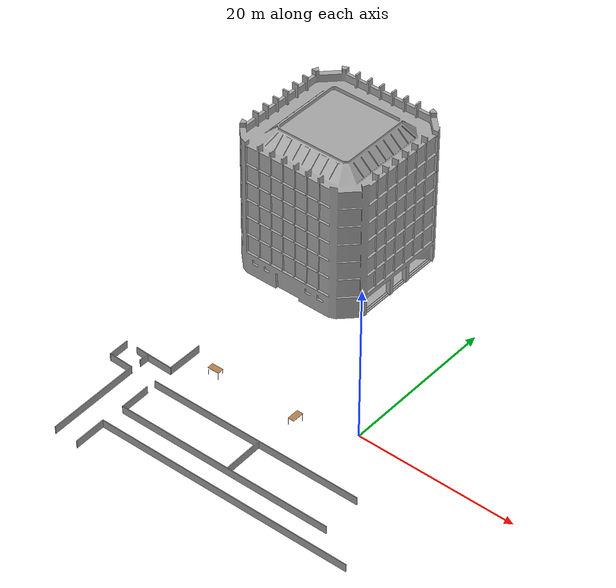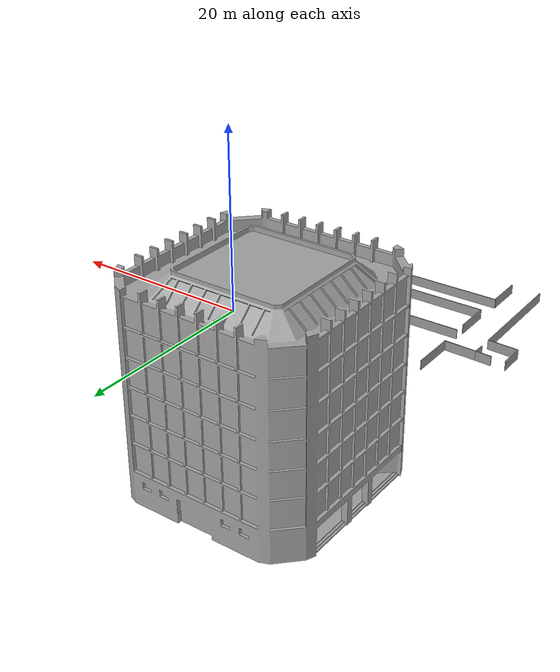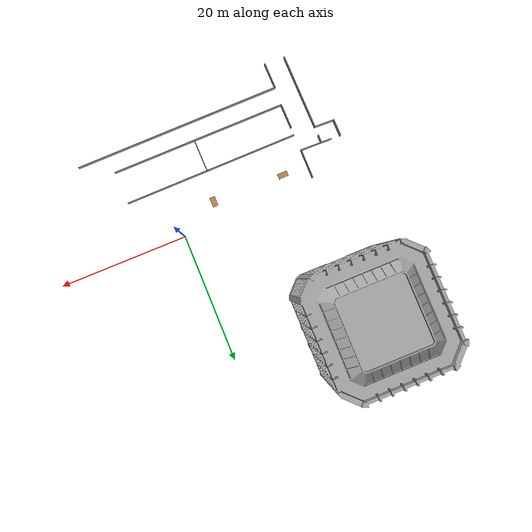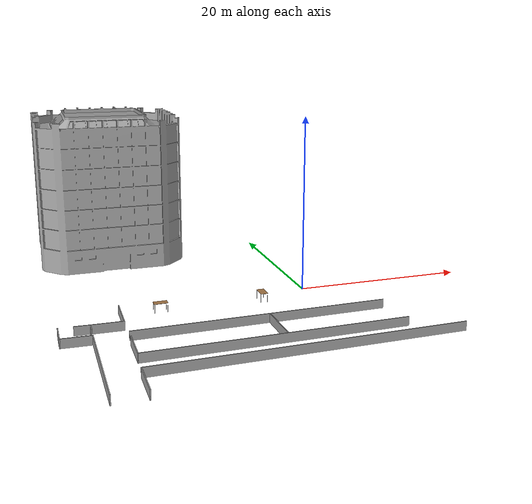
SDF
<sdf version="1.6">
 <world name="default">
  <model name="big_project_room">
   <link name="link_0_clone_clone">
    <pose>-19.9604 2.29143 -0.013844 0.00066 0 -1.57081</pose>
    <inertial>
     <mass>1</mass>
     <inertia>
      <ixx>0.166667</ixx>
      <ixy>0</ixy>
      <ixz>0</ixz>
      <iyy>0.166667</iyy>
      <iyz>0</iyz>
      <izz>0.166667</izz>
     </inertia>
    </inertial>
    <visual name="visual">
     <geometry><box><size>4.527 0.1 1</size></box></geometry>
     <material>
      <lighting>1</lighting>
      <script><uri>file://media/materials/scripts/gazebo.material</uri><name>Gazebo/Grey</name></script>
      <shader type="pixel"><normal_map>__default__</normal_map></shader>
      <ambient>1 1 1 1</ambient>
      <diffuse>0.7 0.7 0.7 1</diffuse>
      <specular>0.01 0.01 0.01 1</specular>
      <emissive>0 0 0 1</emissive>
     </material>
    </visual>
    <collision name="collision">
     <geometry><box><size>4.572 0.1 1</size></box></geometry>
     <surface>
      <friction>
       <ode><mu>1</mu><mu2>1</mu2><fdir1>0 0 0</fdir1><slip1>0</slip1><slip2>0</slip2></ode>
       <torsional>
        <coefficient>1</coefficient>
        <patch_radius>0</patch_radius>
        <surface_radius>0</surface_radius>
        <use_patch_radius>1</use_patch_radius>
        <ode><slip>0</slip></ode>
       </torsional>
      </friction>
      <bounce><restitution_coefficient>0</restitution_coefficient><threshold>1e+06</threshold></bounce>
      <contact>
       <collide_without_contact>0</collide_without_contact>
       <collide_without_contact_bitmask>1</collide_without_contact_bitmask>
       <collide_bitmask>1</collide_bitmask>
       <ode>
        <soft_cfm>0</soft_cfm>
        <soft_erp>0.2</soft_erp>
        <kp>1e+13</kp>
        <kd>1</kd>
        <max_vel>0.01</max_vel>
        <min_depth>0</min_depth>
       </ode>
       <bullet>
        <split_impulse>1</split_impulse>
        <split_impulse_penetration_threshold>-0.01</split_impulse_penetration_threshold>
        <soft_cfm>0</soft_cfm>
        <soft_erp>0.2</soft_erp>
        <kp>1e+13</kp>
        <kd>1</kd>
       </bullet>
      </contact>
     </surface>
    </collision>
   </link>
   <link name="link_clone_1_clone">
    <pose>-3.72157 -10.3844 -0.010858 -0.00132 1.3e-05 -3.13177</pose>
    <inertial>
     <mass>0.268169</mass>
     <inertia>
      <ixx>0.0225823</ixx>
      <ixy>0</ixy>
      <ixz>0</ixz>
      <iyy>23.7593</iyy>
      <iyz>0</iyz>
      <izz>23.7372</izz>
     </inertia>
    </inertial>
    <visual name="visual">
     <geometry><box><size>32.5911 0.10251 1</size></box></geometry>
     <material>
      <script><name>Gazebo/Grey</name><uri>file://media/materials/scripts/gazebo.material</uri></script>
      <shader type="pixel"><normal_map>__default__</normal_map></shader>
      <ambient>1 1 1 1</ambient>
      <diffuse>0.7 0.7 0.7 1</diffuse>
      <specular>0.01 0.01 0.01 1</specular>
      <emissive>0 0 0 1</emissive>
     </material>
    </visual>
    <collision name="collision">
     <geometry><box><size>32.5911 0.10251 1</size></box></geometry>
     <surface>
      <friction>
       <ode><mu>1</mu><mu2>1</mu2><fdir1>0 0 0</fdir1><slip1>0</slip1><slip2>0</slip2></ode>
       <torsional>
        <coefficient>1</coefficient>
        <patch_radius>0</patch_radius>
        <surface_radius>0</surface_radius>
        <use_patch_radius>1</use_patch_radius>
        <ode><slip>0</slip></ode>
       </torsional>
      </friction>
      <bounce><restitution_coefficient>0</restitution_coefficient><threshold>1e+06</threshold></bounce>
      <contact>
       <collide_without_contact>0</collide_without_contact>
       <collide_without_contact_bitmask>1</collide_without_contact_bitmask>
       <collide_bitmask>1</collide_bitmask>
       <ode>
        <soft_cfm>0</soft_cfm>
        <soft_erp>0.2</soft_erp>
        <kp>1e+13</kp>
        <kd>1</kd>
        <max_vel>0.01</max_vel>
        <min_depth>0</min_depth>
       </ode>
       <bullet>
        <split_impulse>1</split_impulse>
        <split_impulse_penetration_threshold>-0.01</split_impulse_penetration_threshold>
        <soft_cfm>0</soft_cfm>
        <soft_erp>0.2</soft_erp>
        <kp>1e+13</kp>
        <kd>1</kd>
       </bullet>
      </contact>
     </surface>
    </collision>
   </link>
   <link name="link_clone_1_clone_1">
    <pose>-21.5976 0.008554 -0.003949 0.00132 2.1e-05 -0.016034</pose>
    <inertial>
     <mass>0.0277737</mass>
     <inertia>
      <ixx>0.0023388</ixx>
      <ixy>0</ixy>
      <ixz>0</ixz>
      <iyy>0.0286838</iyy>
      <iyz>0</iyz>
      <izz>0.0263937</izz>
     </inertia>
    </inertial>
    <visual name="visual">
     <geometry><box><size>3.37539 0.10251 1</size></box></geometry>
     <material>
      <script><name>Gazebo/Grey</name><uri>file://media/materials/scripts/gazebo.material</uri></script>
      <shader type="pixel"><normal_map>__default__</normal_map></shader>
      <ambient>1 1 1 1</ambient>
      <diffuse>0.7 0.7 0.7 1</diffuse>
      <specular>0.01 0.01 0.01 1</specular>
      <emissive>0 0 0 1</emissive>
     </material>
    </visual>
    <collision name="collision">
     <geometry><box><size>3.37539 0.10251 1</size></box></geometry>
     <surface>
      <friction>
       <ode><mu>1</mu><mu2>1</mu2><fdir1>0 0 0</fdir1><slip1>0</slip1><slip2>0</slip2></ode>
       <torsional>
        <coefficient>1</coefficient>
        <patch_radius>0</patch_radius>
        <surface_radius>0</surface_radius>
        <use_patch_radius>1</use_patch_radius>
        <ode><slip>0</slip></ode>
       </torsional>
      </friction>
      <bounce><restitution_coefficient>0</restitution_coefficient><threshold>1e+06</threshold></bounce>
      <contact>
       <collide_without_contact>0</collide_without_contact>
       <collide_without_contact_bitmask>1</collide_without_contact_bitmask>
       <collide_bitmask>1</collide_bitmask>
       <ode>
        <soft_cfm>0</soft_cfm>
        <soft_erp>0.2</soft_erp>
        <kp>1e+13</kp>
        <kd>1</kd>
        <max_vel>0.01</max_vel>
        <min_depth>0</min_depth>
       </ode>
       <bullet>
        <split_impulse>1</split_impulse>
        <split_impulse_penetration_threshold>-0.01</split_impulse_penetration_threshold>
        <soft_cfm>0</soft_cfm>
        <soft_erp>0.2</soft_erp>
        <kp>1e+13</kp>
        <kd>1</kd>
       </bullet>
      </contact>
     </surface>
    </collision>
   </link>
   <link name="link_clone_1_clone_2">
    <pose>-26.3913 -1.18616 -0.004231 2e-05 0.00132 -1.55514</pose>
    <inertial>
     <mass>0.0221356</mass>
     <inertia>
      <ixx>0.00186402</ixx>
      <ixy>0</ixy>
      <ixz>0</ixz>
      <iyy>0.0151943</iyy>
      <iyz>0</iyz>
      <izz>0.0133691</izz>
     </inertia>
    </inertial>
    <visual name="visual">
     <geometry><box><size>2.69018 0.10251 1</size></box></geometry>
     <material>
      <script><name>Gazebo/Grey</name><uri>file://media/materials/scripts/gazebo.material</uri></script>
      <shader type="pixel"><normal_map>__default__</normal_map></shader>
      <ambient>1 1 1 1</ambient>
      <diffuse>0.7 0.7 0.7 1</diffuse>
      <specular>0.01 0.01 0.01 1</specular>
      <emissive>0 0 0 1</emissive>
     </material>
    </visual>
    <collision name="collision">
     <geometry><box><size>2.69018 0.10251 1</size></box></geometry>
     <surface>
      <friction>
       <ode><mu>1</mu><mu2>1</mu2><fdir1>0 0 0</fdir1><slip1>0</slip1><slip2>0</slip2></ode>
       <torsional>
        <coefficient>1</coefficient>
        <patch_radius>0</patch_radius>
        <surface_radius>0</surface_radius>
        <use_patch_radius>1</use_patch_radius>
        <ode><slip>0</slip></ode>
       </torsional>
      </friction>
      <bounce><restitution_coefficient>0</restitution_coefficient><threshold>1e+06</threshold></bounce>
      <contact>
       <collide_without_contact>0</collide_without_contact>
       <collide_without_contact_bitmask>1</collide_without_contact_bitmask>
       <collide_bitmask>1</collide_bitmask>
       <ode>
        <soft_cfm>0</soft_cfm>
        <soft_erp>0.2</soft_erp>
        <kp>1e+13</kp>
        <kd>1</kd>
        <max_vel>0.01</max_vel>
        <min_depth>0</min_depth>
       </ode>
       <bullet>
        <split_impulse>1</split_impulse>
        <split_impulse_penetration_threshold>-0.01</split_impulse_penetration_threshold>
        <soft_cfm>0</soft_cfm>
        <soft_erp>0.2</soft_erp>
        <kp>1e+13</kp>
        <kd>1</kd>
       </bullet>
      </contact>
     </surface>
    </collision>
   </link>
   <link name="link_clone_1_clone_2_clone">
    <pose>-24.7939 -2.51572 -0.005884 -0.001979 -6.5e-05 3.10906</pose>
    <inertial>
     <mass>0.0257709</mass>
     <inertia>
      <ixx>0.00217014</ixx>
      <ixy>0</ixy>
      <ixz>0</ixz>
      <iyy>0.0232138</iyy>
      <iyz>0</iyz>
      <izz>0.0210888</izz>
     </inertia>
    </inertial>
    <visual name="visual">
     <geometry><box><size>3.13198 0.10251 1</size></box></geometry>
     <material>
      <script><name>Gazebo/Grey</name><uri>file://media/materials/scripts/gazebo.material</uri></script>
      <shader type="pixel"><normal_map>__default__</normal_map></shader>
      <ambient>1 1 1 1</ambient>
      <diffuse>0.7 0.7 0.7 1</diffuse>
      <specular>0.01 0.01 0.01 1</specular>
      <emissive>0 0 0 1</emissive>
     </material>
    </visual>
    <collision name="collision">
     <geometry><box><size>3.13198 0.10251 1</size></box></geometry>
     <surface>
      <friction>
       <ode><mu>1</mu><mu2>1</mu2><fdir1>0 0 0</fdir1><slip1>0</slip1><slip2>0</slip2></ode>
       <torsional>
        <coefficient>1</coefficient>
        <patch_radius>0</patch_radius>
        <surface_radius>0</surface_radius>
        <use_patch_radius>1</use_patch_radius>
        <ode><slip>0</slip></ode>
       </torsional>
      </friction>
      <bounce><restitution_coefficient>0</restitution_coefficient><threshold>1e+06</threshold></bounce>
      <contact>
       <collide_without_contact>0</collide_without_contact>
       <collide_without_contact_bitmask>1</collide_without_contact_bitmask>
       <collide_bitmask>1</collide_bitmask>
       <ode>
        <soft_cfm>0</soft_cfm>
        <soft_erp>0.2</soft_erp>
        <kp>1e+13</kp>
        <kd>1</kd>
        <max_vel>0.01</max_vel>
        <min_depth>0</min_depth>
       </ode>
       <bullet>
        <split_impulse>1</split_impulse>
        <split_impulse_penetration_threshold>-0.01</split_impulse_penetration_threshold>
        <soft_cfm>0</soft_cfm>
        <soft_erp>0.2</soft_erp>
        <kp>1e+13</kp>
        <kd>1</kd>
       </bullet>
      </contact>
     </surface>
    </collision>
   </link>
   <link name="link_clone_1_clone_2_clone_0">
    <pose>-23.1913 -8.51767 -0.015724 3e-05 0.00198 -1.55514</pose>
    <inertial>
     <mass>0.0981255</mass>
     <inertia>
      <ixx>0.00826305</ixx>
      <ixy>0</ixy>
      <ixz>0</ixz>
      <iyy>1.17108</iyy>
      <iyz>0</iyz>
      <izz>1.16299</izz>
     </inertia>
    </inertial>
    <visual name="visual">
     <geometry><box><size>11.9254 0.10251 1</size></box></geometry>
     <material>
      <script><name>Gazebo/Grey</name><uri>file://media/materials/scripts/gazebo.material</uri></script>
      <shader type="pixel"><normal_map>__default__</normal_map></shader>
      <ambient>1 1 1 1</ambient>
      <diffuse>0.7 0.7 0.7 1</diffuse>
      <specular>0.01 0.01 0.01 1</specular>
      <emissive>0 0 0 1</emissive>
     </material>
    </visual>
    <collision name="collision">
     <geometry><box><size>11.9254 0.10251 1</size></box></geometry>
     <surface>
      <friction>
       <ode><mu>1</mu><mu2>1</mu2><fdir1>0 0 0</fdir1><slip1>0</slip1><slip2>0</slip2></ode>
       <torsional>
        <coefficient>1</coefficient>
        <patch_radius>0</patch_radius>
        <surface_radius>0</surface_radius>
        <use_patch_radius>1</use_patch_radius>
        <ode><slip>0</slip></ode>
       </torsional>
      </friction>
      <bounce><restitution_coefficient>0</restitution_coefficient><threshold>1e+06</threshold></bounce>
      <contact>
       <collide_without_contact>0</collide_without_contact>
       <collide_without_contact_bitmask>1</collide_without_contact_bitmask>
       <collide_bitmask>1</collide_bitmask>
       <ode>
        <soft_cfm>0</soft_cfm>
        <soft_erp>0.2</soft_erp>
        <kp>1e+13</kp>
        <kd>1</kd>
        <max_vel>0.01</max_vel>
        <min_depth>0</min_depth>
       </ode>
       <bullet>
        <split_impulse>1</split_impulse>
        <split_impulse_penetration_threshold>-0.01</split_impulse_penetration_threshold>
        <soft_cfm>0</soft_cfm>
        <soft_erp>0.2</soft_erp>
        <kp>1e+13</kp>
        <kd>1</kd>
       </bullet>
      </contact>
     </surface>
    </collision>
   </link>
   <link name="link_clone_1_clone_2_clone_1">
    <pose>-19.8397 -5.74339 -0.010301 3e-05 0.00198 -1.55514</pose>
    <inertial>
     <mass>0.0322722</mass>
     <inertia>
      <ixx>0.00271761</ixx>
      <ixy>0</ixy>
      <ixz>0</ixz>
      <iyy>0.0440592</iyy>
      <iyz>0</iyz>
      <izz>0.0413981</izz>
     </inertia>
    </inertial>
    <visual name="visual">
     <geometry><box><size>3.9221 0.10251 1</size></box></geometry>
     <material>
      <script><name>Gazebo/Grey</name><uri>file://media/materials/scripts/gazebo.material</uri></script>
      <shader type="pixel"><normal_map>__default__</normal_map></shader>
      <ambient>1 1 1 1</ambient>
      <diffuse>0.7 0.7 0.7 1</diffuse>
      <specular>0.01 0.01 0.01 1</specular>
      <emissive>0 0 0 1</emissive>
     </material>
    </visual>
    <collision name="collision">
     <geometry><box><size>3.9221 0.10251 1</size></box></geometry>
     <surface>
      <friction>
       <ode><mu>1</mu><mu2>1</mu2><fdir1>0 0 0</fdir1><slip1>0</slip1><slip2>0</slip2></ode>
       <torsional>
        <coefficient>1</coefficient>
        <patch_radius>0</patch_radius>
        <surface_radius>0</surface_radius>
        <use_patch_radius>1</use_patch_radius>
        <ode><slip>0</slip></ode>
       </torsional>
      </friction>
      <bounce><restitution_coefficient>0</restitution_coefficient><threshold>1e+06</threshold></bounce>
      <contact>
       <collide_without_contact>0</collide_without_contact>
       <collide_without_contact_bitmask>1</collide_without_contact_bitmask>
       <collide_bitmask>1</collide_bitmask>
       <ode>
        <soft_cfm>0</soft_cfm>
        <soft_erp>0.2</soft_erp>
        <kp>1e+13</kp>
        <kd>1</kd>
        <max_vel>0.01</max_vel>
        <min_depth>0</min_depth>
       </ode>
       <bullet>
        <split_impulse>1</split_impulse>
        <split_impulse_penetration_threshold>-0.01</split_impulse_penetration_threshold>
        <soft_cfm>0</soft_cfm>
        <soft_erp>0.2</soft_erp>
        <kp>1e+13</kp>
        <kd>1</kd>
       </bullet>
      </contact>
     </surface>
    </collision>
   </link>
   <link name="link_clone_1_clone_2_clone_2">
    <pose>-6.03056 -7.55995 -0.009221 -0.00198 1.6e-05 -3.13341</pose>
    <inertial>
     <mass>0.226606</mass>
     <inertia>
      <ixx>0.0190822</ixx>
      <ixy>0</ixy>
      <ixz>0</ixz>
      <iyy>14.3411</iyy>
      <iyz>0</iyz>
      <izz>14.3224</izz>
     </inertia>
    </inertial>
    <visual name="visual">
     <geometry><box><size>27.5398 0.10251 1</size></box></geometry>
     <material>
      <script><name>Gazebo/Grey</name><uri>file://media/materials/scripts/gazebo.material</uri></script>
      <shader type="pixel"><normal_map>__default__</normal_map></shader>
      <ambient>1 1 1 1</ambient>
      <diffuse>0.7 0.7 0.7 1</diffuse>
      <specular>0.01 0.01 0.01 1</specular>
      <emissive>0 0 0 1</emissive>
     </material>
    </visual>
    <collision name="collision">
     <geometry><box><size>27.5398 0.10251 1</size></box></geometry>
     <surface>
      <friction>
       <ode><mu>1</mu><mu2>1</mu2><fdir1>0 0 0</fdir1><slip1>0</slip1><slip2>0</slip2></ode>
       <torsional>
        <coefficient>1</coefficient>
        <patch_radius>0</patch_radius>
        <surface_radius>0</surface_radius>
        <use_patch_radius>1</use_patch_radius>
        <ode><slip>0</slip></ode>
       </torsional>
      </friction>
      <bounce><restitution_coefficient>0</restitution_coefficient><threshold>1e+06</threshold></bounce>
      <contact>
       <collide_without_contact>0</collide_without_contact>
       <collide_without_contact_bitmask>1</collide_without_contact_bitmask>
       <collide_bitmask>1</collide_bitmask>
       <ode>
        <soft_cfm>0</soft_cfm>
        <soft_erp>0.2</soft_erp>
        <kp>1e+13</kp>
        <kd>1</kd>
        <max_vel>0.01</max_vel>
        <min_depth>0</min_depth>
       </ode>
       <bullet>
        <split_impulse>1</split_impulse>
        <split_impulse_penetration_threshold>-0.01</split_impulse_penetration_threshold>
        <soft_cfm>0</soft_cfm>
        <soft_erp>0.2</soft_erp>
        <kp>1e+13</kp>
        <kd>1</kd>
       </bullet>
      </contact>
     </surface>
    </collision>
   </link>
   <link name="link_clone_1_clone_2_clone_3_clone">
    <pose>-5.40026 -4.97676 -0.009073 4e-05 0.00264 -1.55514</pose>
    <inertial>
     <mass>0.0424114</mass>
     <inertia>
      <ixx>0.00357143</ixx>
      <ixy>0</ixy>
      <ixz>0</ixz>
      <iyy>0.0974306</iyy>
      <iyz>0</iyz>
      <izz>0.0939334</izz>
     </inertia>
    </inertial>
    <visual name="visual">
     <geometry><box><size>5.15434 0.10251 1</size></box></geometry>
     <material>
      <script><name>Gazebo/Grey</name><uri>file://media/materials/scripts/gazebo.material</uri></script>
      <shader type="pixel"><normal_map>__default__</normal_map></shader>
      <ambient>1 1 1 1</ambient>
      <diffuse>0.7 0.7 0.7 1</diffuse>
      <specular>0.01 0.01 0.01 1</specular>
      <emissive>0 0 0 1</emissive>
     </material>
    </visual>
    <collision name="collision">
     <geometry><box><size>5.15434 0.10251 1</size></box></geometry>
     <surface>
      <friction>
       <ode><mu>1</mu><mu2>1</mu2><fdir1>0 0 0</fdir1><slip1>0</slip1><slip2>0</slip2></ode>
       <torsional>
        <coefficient>1</coefficient>
        <patch_radius>0</patch_radius>
        <surface_radius>0</surface_radius>
        <use_patch_radius>1</use_patch_radius>
        <ode><slip>0</slip></ode>
       </torsional>
      </friction>
      <bounce><restitution_coefficient>0</restitution_coefficient><threshold>1e+06</threshold></bounce>
      <contact>
       <collide_without_contact>0</collide_without_contact>
       <collide_without_contact_bitmask>1</collide_without_contact_bitmask>
       <collide_bitmask>1</collide_bitmask>
       <ode>
        <soft_cfm>0</soft_cfm>
        <soft_erp>0.2</soft_erp>
        <kp>1e+13</kp>
        <kd>1</kd>
        <max_vel>0.01</max_vel>
        <min_depth>0</min_depth>
       </ode>
       <bullet>
        <split_impulse>1</split_impulse>
        <split_impulse_penetration_threshold>-0.01</split_impulse_penetration_threshold>
        <soft_cfm>0</soft_cfm>
        <soft_erp>0.2</soft_erp>
        <kp>1e+13</kp>
        <kd>1</kd>
       </bullet>
      </contact>
     </surface>
    </collision>
   </link>
   <link name="link_clone_1_clone_2_clone_3_clone_0">
    <pose>-19.9392 -12.5873 -0.015233 4e-05 0.00264 -1.55514</pose>
    <inertial>
     <mass>0.033243</mass>
     <inertia>
      <ixx>0.00279936</ixx>
      <ixy>0</ixy>
      <ixz>0</ixz>
      <iyy>0.047987</iyy>
      <iyz>0</iyz>
      <izz>0.0452459</izz>
     </inertia>
    </inertial>
    <visual name="visual">
     <geometry><box><size>4.04008 0.10251 1</size></box></geometry>
     <material>
      <script><name>Gazebo/Grey</name><uri>file://media/materials/scripts/gazebo.material</uri></script>
      <shader type="pixel"><normal_map>__default__</normal_map></shader>
      <ambient>1 1 1 1</ambient>
      <diffuse>0.7 0.7 0.7 1</diffuse>
      <specular>0.01 0.01 0.01 1</specular>
      <emissive>0 0 0 1</emissive>
     </material>
    </visual>
    <collision name="collision">
     <geometry><box><size>4.04008 0.10251 1</size></box></geometry>
     <surface>
      <friction>
       <ode><mu>1</mu><mu2>1</mu2><fdir1>0 0 0</fdir1><slip1>0</slip1><slip2>0</slip2></ode>
       <torsional>
        <coefficient>1</coefficient>
        <patch_radius>0</patch_radius>
        <surface_radius>0</surface_radius>
        <use_patch_radius>1</use_patch_radius>
        <ode><slip>0</slip></ode>
       </torsional>
      </friction>
      <bounce><restitution_coefficient>0</restitution_coefficient><threshold>1e+06</threshold></bounce>
      <contact>
       <collide_without_contact>0</collide_without_contact>
       <collide_without_contact_bitmask>1</collide_without_contact_bitmask>
       <collide_bitmask>1</collide_bitmask>
       <ode>
        <soft_cfm>0</soft_cfm>
        <soft_erp>0.2</soft_erp>
        <kp>1e+13</kp>
        <kd>1</kd>
        <max_vel>0.01</max_vel>
        <min_depth>0</min_depth>
       </ode>
       <bullet>
        <split_impulse>1</split_impulse>
        <split_impulse_penetration_threshold>-0.01</split_impulse_penetration_threshold>
        <soft_cfm>0</soft_cfm>
        <soft_erp>0.2</soft_erp>
        <kp>1e+13</kp>
        <kd>1</kd>
       </bullet>
      </contact>
     </surface>
    </collision>
   </link>
   <link name="link_clone_1_clone_2_clone_3_clone_1">
    <pose>-23.2761 -0.593716 -0.007318 -1.5e-05 0.00264 -1.57603</pose>
    <inertial>
     <mass>0.00991228</mass>
     <inertia>
      <ixx>0.000834703</ixx>
      <ixy>0</ixy>
      <ixz>0</ixz>
      <iyy>0.00202475</iyy>
      <iyz>0</iyz>
      <izz>0.0012074</izz>
     </inertia>
    </inertial>
    <visual name="visual">
     <geometry><box><size>1.20466 0.10251 1</size></box></geometry>
     <material>
      <script><name>Gazebo/Grey</name><uri>file://media/materials/scripts/gazebo.material</uri></script>
      <shader type="pixel"><normal_map>__default__</normal_map></shader>
      <ambient>1 1 1 1</ambient>
      <diffuse>0.7 0.7 0.7 1</diffuse>
      <specular>0.01 0.01 0.01 1</specular>
      <emissive>0 0 0 1</emissive>
     </material>
    </visual>
    <collision name="collision">
     <geometry><box><size>1.20466 0.10251 1</size></box></geometry>
     <surface>
      <friction>
       <ode><mu>1</mu><mu2>1</mu2><fdir1>0 0 0</fdir1><slip1>0</slip1><slip2>0</slip2></ode>
       <torsional>
        <coefficient>1</coefficient>
        <patch_radius>0</patch_radius>
        <surface_radius>0</surface_radius>
        <use_patch_radius>1</use_patch_radius>
        <ode><slip>0</slip></ode>
       </torsional>
      </friction>
      <bounce><restitution_coefficient>0</restitution_coefficient><threshold>1e+06</threshold></bounce>
      <contact>
       <collide_without_contact>0</collide_without_contact>
       <collide_without_contact_bitmask>1</collide_without_contact_bitmask>
       <collide_bitmask>1</collide_bitmask>
       <ode>
        <soft_cfm>0</soft_cfm>
        <soft_erp>0.2</soft_erp>
        <kp>1e+13</kp>
        <kd>1</kd>
        <max_vel>0.01</max_vel>
        <min_depth>0</min_depth>
       </ode>
       <bullet>
        <split_impulse>1</split_impulse>
        <split_impulse_penetration_threshold>-0.01</split_impulse_penetration_threshold>
        <soft_cfm>0</soft_cfm>
        <soft_erp>0.2</soft_erp>
        <kp>1e+13</kp>
        <kd>1</kd>
       </bullet>
      </contact>
     </surface>
    </collision>
   </link>
   <link name="link_clone_1_clone_2_clone_3_clone_2">
    <pose>-24.0829 0.066553 -0.006882 -0.002638 -0.000101 3.10387</pose>
    <inertial>
     <mass>0.0136938</mass>
     <inertia>
      <ixx>0.00115314</ixx>
      <ixy>0</ixy>
      <ixz>0</ixz>
      <iyy>0.00430172</iyy>
      <iyz>0</iyz>
      <izz>0.00317256</izz>
     </inertia>
    </inertial>
    <visual name="visual">
     <geometry><box><size>1.66423 0.10251 1</size></box></geometry>
     <material>
      <script><name>Gazebo/Grey</name><uri>file://media/materials/scripts/gazebo.material</uri></script>
      <shader type="pixel"><normal_map>__default__</normal_map></shader>
      <ambient>1 1 1 1</ambient>
      <diffuse>0.7 0.7 0.7 1</diffuse>
      <specular>0.01 0.01 0.01 1</specular>
      <emissive>0 0 0 1</emissive>
     </material>
    </visual>
    <collision name="collision">
     <geometry><box><size>1.66423 0.10251 1</size></box></geometry>
     <surface>
      <friction>
       <ode><mu>1</mu><mu2>1</mu2><fdir1>0 0 0</fdir1><slip1>0</slip1><slip2>0</slip2></ode>
       <torsional>
        <coefficient>1</coefficient>
        <patch_radius>0</patch_radius>
        <surface_radius>0</surface_radius>
        <use_patch_radius>1</use_patch_radius>
        <ode><slip>0</slip></ode>
       </torsional>
      </friction>
      <bounce><restitution_coefficient>0</restitution_coefficient><threshold>1e+06</threshold></bounce>
      <contact>
       <collide_without_contact>0</collide_without_contact>
       <collide_without_contact_bitmask>1</collide_without_contact_bitmask>
       <collide_bitmask>1</collide_bitmask>
       <ode>
        <soft_cfm>0</soft_cfm>
        <soft_erp>0.2</soft_erp>
        <kp>1e+13</kp>
        <kd>1</kd>
        <max_vel>0.01</max_vel>
        <min_depth>0</min_depth>
       </ode>
       <bullet>
        <split_impulse>1</split_impulse>
        <split_impulse_penetration_threshold>-0.01</split_impulse_penetration_threshold>
        <soft_cfm>0</soft_cfm>
        <soft_erp>0.2</soft_erp>
        <kp>1e+13</kp>
        <kd>1</kd>
       </bullet>
      </contact>
     </surface>
    </collision>
   </link>
   <link name="link_clone_1_clone_clone">
    <pose>-6.14389 -2.4627 -0.012502 -0.00198 1.9e-05 -3.13177</pose>
    <inertial>
     <mass>0.225656</mass>
     <inertia>
      <ixx>0.0190022</ixx>
      <ixy>0</ixy>
      <ixz>0</ixz>
      <iyy>14.1617</iyy>
      <iyz>0</iyz>
      <izz>14.1431</izz>
     </inertia>
    </inertial>
    <visual name="visual">
     <geometry><box><size>27.4243 0.10251 1</size></box></geometry>
     <material>
      <script><name>Gazebo/Grey</name><uri>file://media/materials/scripts/gazebo.material</uri></script>
      <shader type="pixel"><normal_map>__default__</normal_map></shader>
      <ambient>1 1 1 1</ambient>
      <diffuse>0.7 0.7 0.7 1</diffuse>
      <specular>0.01 0.01 0.01 1</specular>
      <emissive>0 0 0 1</emissive>
     </material>
    </visual>
    <collision name="collision">
     <geometry><box><size>27.4243 0.10251 1</size></box></geometry>
     <surface>
      <friction>
       <ode><mu>1</mu><mu2>1</mu2><fdir1>0 0 0</fdir1><slip1>0</slip1><slip2>0</slip2></ode>
       <torsional>
        <coefficient>1</coefficient>
        <patch_radius>0</patch_radius>
        <surface_radius>0</surface_radius>
        <use_patch_radius>1</use_patch_radius>
        <ode><slip>0</slip></ode>
       </torsional>
      </friction>
      <bounce><restitution_coefficient>0</restitution_coefficient><threshold>1e+06</threshold></bounce>
      <contact>
       <collide_without_contact>0</collide_without_contact>
       <collide_without_contact_bitmask>1</collide_without_contact_bitmask>
       <collide_bitmask>1</collide_bitmask>
       <ode>
        <soft_cfm>0</soft_cfm>
        <soft_erp>0.2</soft_erp>
        <kp>1e+13</kp>
        <kd>1</kd>
        <max_vel>0.01</max_vel>
        <min_depth>0</min_depth>
       </ode>
       <bullet>
        <split_impulse>1</split_impulse>
        <split_impulse_penetration_threshold>-0.01</split_impulse_penetration_threshold>
        <soft_cfm>0</soft_cfm>
        <soft_erp>0.2</soft_erp>
        <kp>1e+13</kp>
        <kd>1</kd>
       </bullet>
      </contact>
     </surface>
    </collision>
   </link>
   <model name="Office Building">
    <static>1</static>
    <link name="link">
     <collision name="collision">
      <geometry><mesh><uri>model://office_building/meshes/office_building.dae</uri></mesh></geometry>
     </collision>
     <visual name="visual">
      <geometry><mesh><uri>model://office_building/meshes/office_building.dae</uri></mesh></geometry>
     </visual>
    </link>
    <pose>-18.4211 26.3444 0.000735 0 -0 1.57139</pose>
   </model>
   <model name="table_1">
    <static>1</static>
    <link name="link">
     <collision name="surface">
      <pose>0 0 1 0 -0 0</pose>
      <geometry><box><size>1.5 0.8 0.03</size></box></geometry>
      <surface><friction><ode><mu>0.6</mu><mu2>0.6</mu2></ode></friction></surface>
     </collision>
     <visual name="visual1">
      <pose>0 0 1 0 -0 0</pose>
      <geometry><box><size>1.5 0.8 0.03</size></box></geometry>
      <material>
       <script><uri>file://media/materials/scripts/gazebo.material</uri><name>Gazebo/Wood</name></script>
      </material>
     </visual>
     <collision name="front_left_leg">
      <pose>0.68 0.38 0.5 0 -0 0</pose>
      <geometry><cylinder><radius>0.02</radius><length>1</length></cylinder></geometry>
     </collision>
     <visual name="front_left_leg">
      <pose>0.68 0.38 0.5 0 -0 0</pose>
      <geometry><cylinder><radius>0.02</radius><length>1</length></cylinder></geometry>
      <material>
       <script><uri>file://media/materials/scripts/gazebo.material</uri><name>Gazebo/Grey</name></script>
      </material>
     </visual>
     <collision name="front_right_leg">
      <pose>0.68 -0.38 0.5 0 -0 0</pose>
      <geometry><cylinder><radius>0.02</radius><length>1</length></cylinder></geometry>
     </collision>
     <visual name="front_right_leg">
      <pose>0.68 -0.38 0.5 0 -0 0</pose>
      <geometry><cylinder><radius>0.02</radius><length>1</length></cylinder></geometry>
      <material>
       <script><uri>file://media/materials/scripts/gazebo.material</uri><name>Gazebo/Grey</name></script>
      </material>
     </visual>
     <collision name="back_right_leg">
      <pose>-0.68 -0.38 0.5 0 -0 0</pose>
      <geometry><cylinder><radius>0.02</radius><length>1</length></cylinder></geometry>
     </collision>
     <visual name="back_right_leg">
      <pose>-0.68 -0.38 0.5 0 -0 0</pose>
      <geometry><cylinder><radius>0.02</radius><length>1</length></cylinder></geometry>
      <material>
       <script><uri>file://media/materials/scripts/gazebo.material</uri><name>Gazebo/Grey</name></script>
      </material>
     </visual>
     <collision name="back_left_leg">
      <pose>-0.68 0.38 0.5 0 -0 0</pose>
      <geometry><cylinder><radius>0.02</radius><length>1</length></cylinder></geometry>
     </collision>
     <visual name="back_left_leg">
      <pose>-0.68 0.38 0.5 0 -0 0</pose>
      <geometry><cylinder><radius>0.02</radius><length>1</length></cylinder></geometry>
      <material>
       <script><uri>file://media/materials/scripts/gazebo.material</uri><name>Gazebo/Grey</name></script>
      </material>
     </visual>
    </link>
    <pose>-4.60631 2.45508 0.00162 -0 -0 -1.56878</pose>
   </model>
   <model name="table_2">
    <static>1</static>
    <link name="link">
     <collision name="surface">
      <pose>0 0 1 0 -0 0</pose>
      <geometry><box><size>1.5 0.8 0.03</size></box></geometry>
      <surface><friction><ode><mu>0.6</mu><mu2>0.6</mu2></ode></friction></surface>
     </collision>
     <visual name="visual1">
      <pose>0 0 1 0 -0 0</pose>
      <geometry><box><size>1.5 0.8 0.03</size></box></geometry>
      <material>
       <script><uri>file://media/materials/scripts/gazebo.material</uri><name>Gazebo/Wood</name></script>
      </material>
     </visual>
     <collision name="front_left_leg">
      <pose>0.68 0.38 0.5 0 -0 0</pose>
      <geometry><cylinder><radius>0.02</radius><length>1</length></cylinder></geometry>
     </collision>
     <visual name="front_left_leg">
      <pose>0.68 0.38 0.5 0 -0 0</pose>
      <geometry><cylinder><radius>0.02</radius><length>1</length></cylinder></geometry>
      <material>
       <script><uri>file://media/materials/scripts/gazebo.material</uri><name>Gazebo/Grey</name></script>
      </material>
     </visual>
     <collision name="front_right_leg">
      <pose>0.68 -0.38 0.5 0 -0 0</pose>
      <geometry><cylinder><radius>0.02</radius><length>1</length></cylinder></geometry>
     </collision>
     <visual name="front_right_leg">
      <pose>0.68 -0.38 0.5 0 -0 0</pose>
      <geometry><cylinder><radius>0.02</radius><length>1</length></cylinder></geometry>
      <material>
       <script><uri>file://media/materials/scripts/gazebo.material</uri><name>Gazebo/Grey</name></script>
      </material>
     </visual>
     <collision name="back_right_leg">
      <pose>-0.68 -0.38 0.5 0 -0 0</pose>
      <geometry><cylinder><radius>0.02</radius><length>1</length></cylinder></geometry>
     </collision>
     <visual name="back_right_leg">
      <pose>-0.68 -0.38 0.5 0 -0 0</pose>
      <geometry><cylinder><radius>0.02</radius><length>1</length></cylinder></geometry>
      <material>
       <script><uri>file://media/materials/scripts/gazebo.material</uri><name>Gazebo/Grey</name></script>
      </material>
     </visual>
     <collision name="back_left_leg">
      <pose>-0.68 0.38 0.5 0 -0 0</pose>
      <geometry><cylinder><radius>0.02</radius><length>1</length></cylinder></geometry>
     </collision>
     <visual name="back_left_leg">
      <pose>-0.68 0.38 0.5 0 -0 0</pose>
      <geometry><cylinder><radius>0.02</radius><length>1</length></cylinder></geometry>
      <material>
       <script><uri>file://media/materials/scripts/gazebo.material</uri><name>Gazebo/Grey</name></script>
      </material>
     </visual>
    </link>
    <pose>-15.818 2.57759 0.001701 0 -0 -3.12244</pose>
   </model>
   <static>1</static>
   <pose>-1.4066 -5.63337 0.499674 -0.00066 0 0</pose>
  </model>
 </world>
</sdf>
